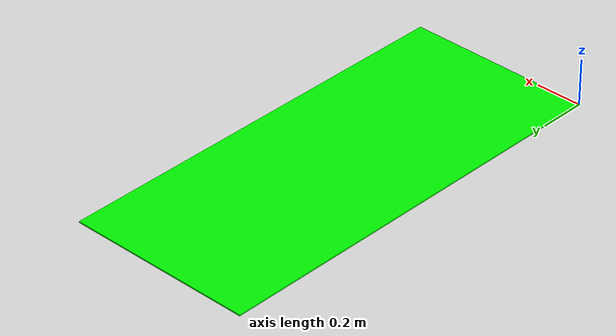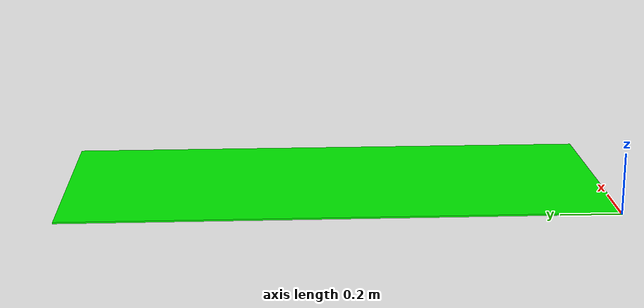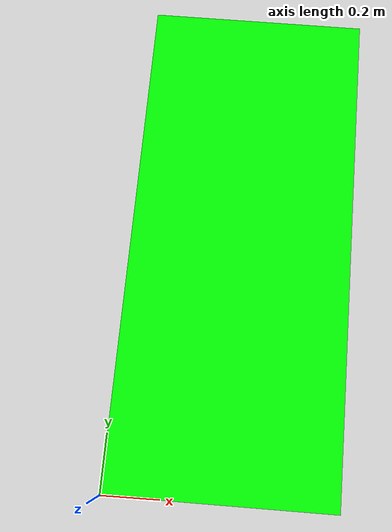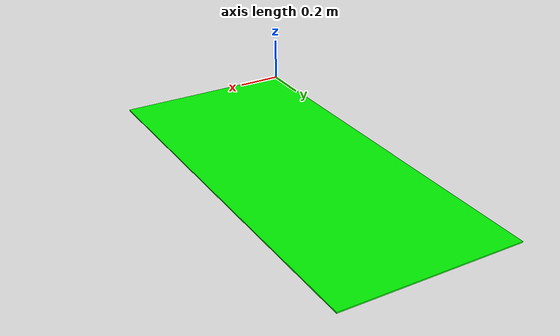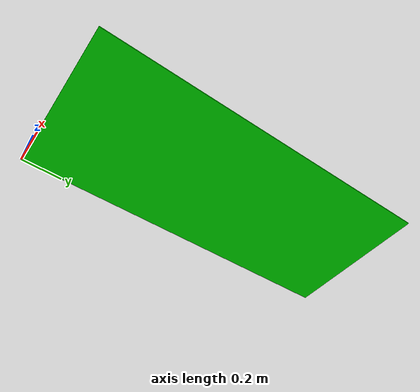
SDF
<?xml version="1.0" ?>
<sdf version="1.5">
  <model name="start_pod">
    <static>true</static>
    <link name="link">
      <pose>0 0 0 0 0 0</pose>
      <collision name="collision">
        <geometry>
            <mesh>
              <uri>
                model://start_pod/mesh/start_pod.stl
              </uri>
              <scale>
                0.001 0.001 0.001
              </scale>
            </mesh>
        </geometry>
      </collision>
      <visual name="visual">
        <cast_shadows>true</cast_shadows>
        <geometry>
            <mesh>
              <uri>
                model://start_pod/mesh/start_pod.stl
              </uri>
              <scale>
                0.001 0.001 0.001
              </scale>
            </mesh>
        </geometry>
        <material> <!-- color white -->
          <ambient>0 1 0 1</ambient>
          <diffuse>0 1 0 1</diffuse>
          <specular>0 0 0 0</specular>
          <emissive>0 0 0 1</emissive>
        </material>
      </visual>
    </link>
  </model>
</sdf>
